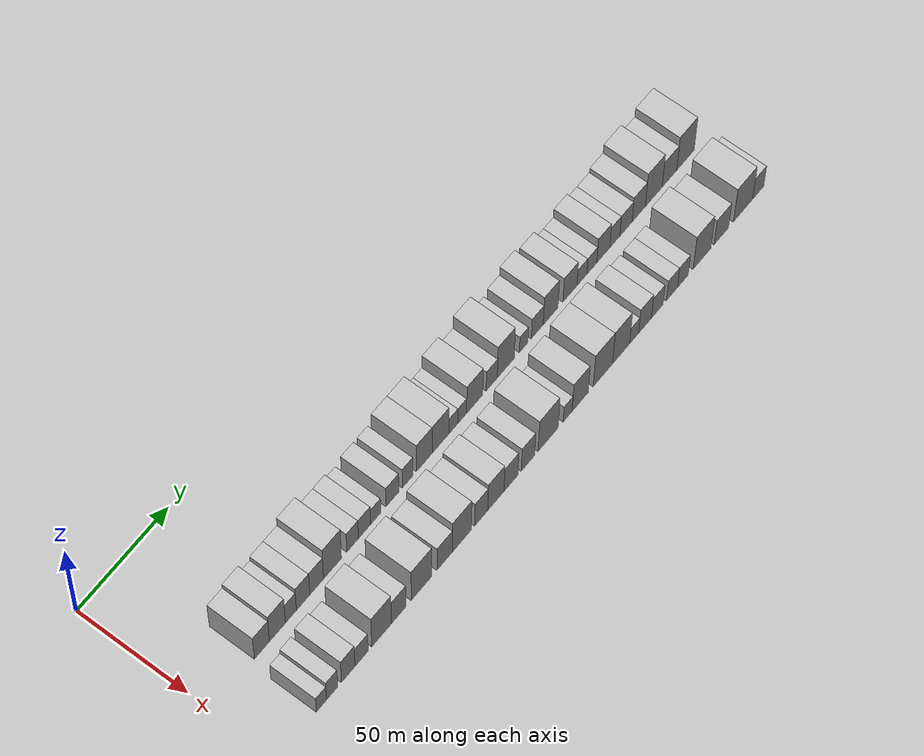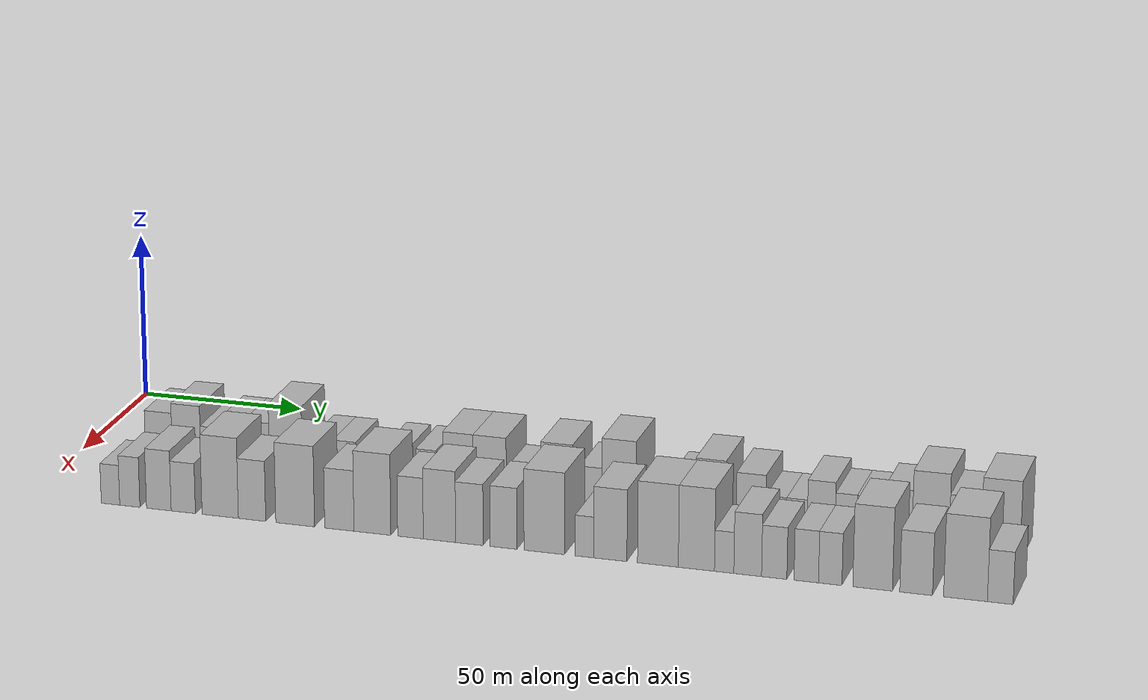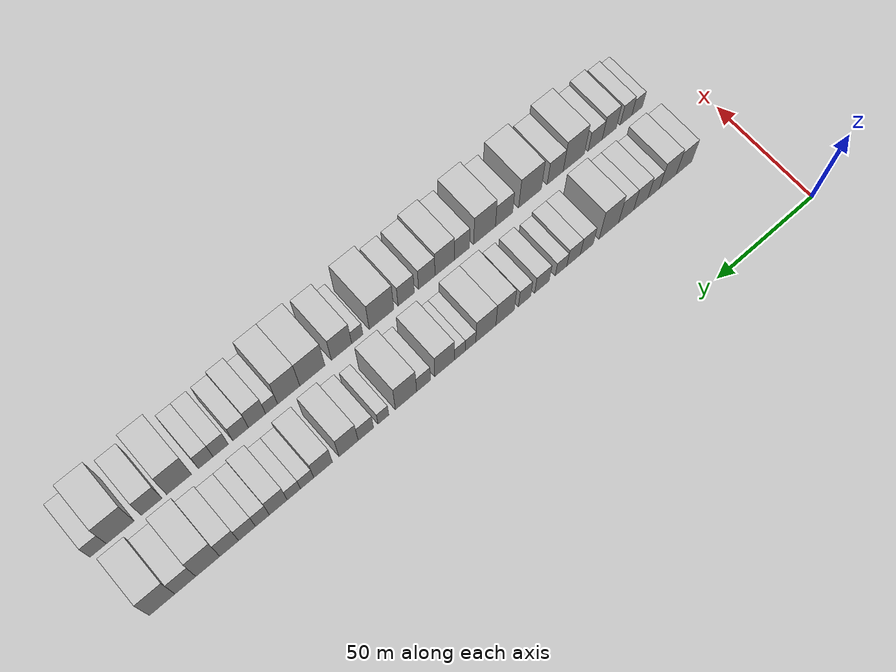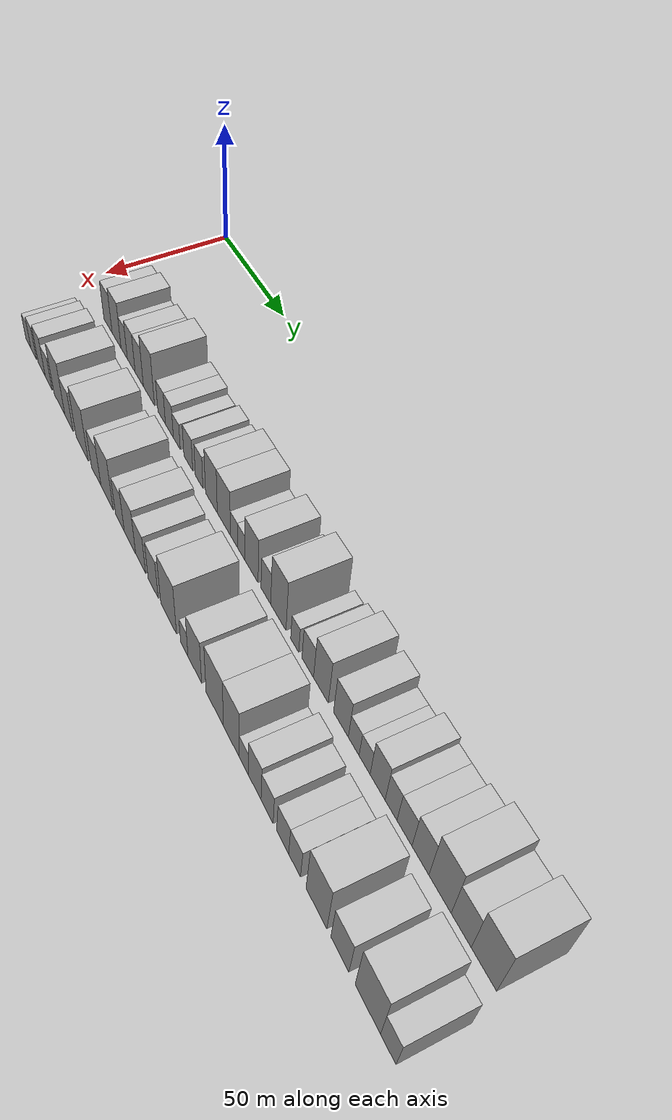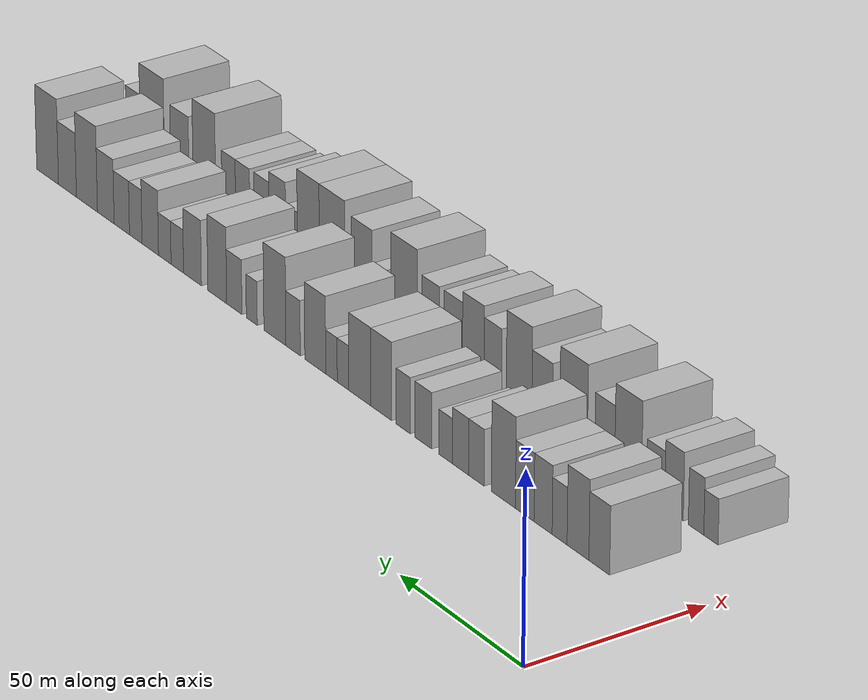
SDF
<sdf version="1.6">
 <world name="default">
  <model name="building_24">
   <static>1</static>
   <pose>50.0000 27.8491 0 0.000000 0.000000 0.000000</pose>
   <link name="link">
    <pose>0 0 9.00 0 0 0</pose>
    <collision name="collision"><geometry><box><size>20.0000 8.2705 18.0000</size></box></geometry></collision>
    <visual name="visual">
     <cast_shadows>0</cast_shadows>
     <geometry><box><size>20.0000 8.2705 18.0000</size></box></geometry>
     <material>
      <script>
       <uri>model://HANNAS_wall/materials/scripts</uri>
       <uri>model://HANNAS_wall/materials/textures</uri>
       <name>vrc/HANNAS_wall</name>
      </script>
     </material>
    </visual>
   </link>
  </model>
  <model name="building_25">
   <static>1</static>
   <pose>50.0000 36.3773 0 0.000000 0.000000 0.000000</pose>
   <link name="link">
    <pose>0 0 10.50 0 0 0</pose>
    <collision name="collision"><geometry><box><size>20.0000 8.7859 21.0000</size></box></geometry></collision>
    <visual name="visual">
     <cast_shadows>0</cast_shadows>
     <geometry><box><size>20.0000 8.7859 21.0000</size></box></geometry>
     <material>
      <script>
       <uri>model://HANNAS_wall/materials/scripts</uri>
       <uri>model://HANNAS_wall/materials/textures</uri>
       <name>vrc/HANNAS_wall</name>
      </script>
     </material>
    </visual>
   </link>
  </model>
  <model name="building_26">
   <static>1</static>
   <pose>50.0000 43.7820 0 0.000000 0.000000 0.000000</pose>
   <link name="link">
    <pose>0 0 7.50 0 0 0</pose>
    <collision name="collision"><geometry><box><size>20.0000 6.0235 15.0000</size></box></geometry></collision>
    <visual name="visual">
     <cast_shadows>0</cast_shadows>
     <geometry><box><size>20.0000 6.0235 15.0000</size></box></geometry>
     <material>
      <script>
       <uri>model://HANNAS_wall/materials/scripts</uri>
       <uri>model://HANNAS_wall/materials/textures</uri>
       <name>vrc/HANNAS_wall</name>
      </script>
     </material>
    </visual>
   </link>
  </model>
  <model name="building_27">
   <static>1</static>
   <pose>50.0000 50.4874 0 0.000000 0.000000 0.000000</pose>
   <link name="link">
    <pose>0 0 9.00 0 0 0</pose>
    <collision name="collision"><geometry><box><size>20.0000 7.3873 18.0000</size></box></geometry></collision>
    <visual name="visual">
     <cast_shadows>0</cast_shadows>
     <geometry><box><size>20.0000 7.3873 18.0000</size></box></geometry>
     <material>
      <script>
       <uri>model://HANNAS_wall/materials/scripts</uri>
       <uri>model://HANNAS_wall/materials/textures</uri>
       <name>vrc/HANNAS_wall</name>
      </script>
     </material>
    </visual>
   </link>
  </model>
  <model name="building_28">
   <static>1</static>
   <pose>50.0000 57.9974 0 0.000000 0.000000 0.000000</pose>
   <link name="link">
    <pose>0 0 9.00 0 0 0</pose>
    <collision name="collision"><geometry><box><size>20.0000 7.6327 18.0000</size></box></geometry></collision>
    <visual name="visual">
     <cast_shadows>0</cast_shadows>
     <geometry><box><size>20.0000 7.6327 18.0000</size></box></geometry>
     <material>
      <script>
       <uri>model://HANNAS_wall/materials/scripts</uri>
       <uri>model://HANNAS_wall/materials/textures</uri>
       <name>vrc/HANNAS_wall</name>
      </script>
     </material>
    </visual>
   </link>
  </model>
  <model name="building_29">
   <static>1</static>
   <pose>50.0000 66.8015 0 0.000000 0.000000 0.000000</pose>
   <link name="link">
    <pose>0 0 12.00 0 0 0</pose>
    <collision name="collision"><geometry><box><size>20.0000 9.9755 24.0000</size></box></geometry></collision>
    <visual name="visual">
     <cast_shadows>0</cast_shadows>
     <geometry><box><size>20.0000 9.9755 24.0000</size></box></geometry>
     <material>
      <script>
       <uri>model://HANNAS_wall/materials/scripts</uri>
       <uri>model://HANNAS_wall/materials/textures</uri>
       <name>vrc/HANNAS_wall</name>
      </script>
     </material>
    </visual>
   </link>
  </model>
  <model name="building_30">
   <static>1</static>
   <pose>50.0000 78.0534 0 0.000000 0.000000 0.000000</pose>
   <link name="link">
    <pose>0 0 7.50 0 0 0</pose>
    <collision name="collision"><geometry><box><size>20.0000 6.5283 15.0000</size></box></geometry></collision>
    <visual name="visual">
     <cast_shadows>0</cast_shadows>
     <geometry><box><size>20.0000 6.5283 15.0000</size></box></geometry>
     <material>
      <script>
       <uri>model://HANNAS_wall/materials/scripts</uri>
       <uri>model://HANNAS_wall/materials/textures</uri>
       <name>vrc/HANNAS_wall</name>
      </script>
     </material>
    </visual>
   </link>
  </model>
  <model name="building_31">
   <static>1</static>
   <pose>50.0000 84.7035 0 0.000000 0.000000 0.000000</pose>
   <link name="link">
    <pose>0 0 7.50 0 0 0</pose>
    <collision name="collision"><geometry><box><size>20.0000 6.7718 15.0000</size></box></geometry></collision>
    <visual name="visual">
     <cast_shadows>0</cast_shadows>
     <geometry><box><size>20.0000 6.7718 15.0000</size></box></geometry>
     <material>
      <script>
       <uri>model://HANNAS_wall/materials/scripts</uri>
       <uri>model://HANNAS_wall/materials/textures</uri>
       <name>vrc/HANNAS_wall</name>
      </script>
     </material>
    </visual>
   </link>
  </model>
  <model name="building_32">
   <static>1</static>
   <pose>50.0000 90.9740 0 0.000000 0.000000 0.000000</pose>
   <link name="link">
    <pose>0 0 6.00 0 0 0</pose>
    <collision name="collision"><geometry><box><size>20.0000 5.7691 12.0000</size></box></geometry></collision>
    <visual name="visual">
     <cast_shadows>0</cast_shadows>
     <geometry><box><size>20.0000 5.7691 12.0000</size></box></geometry>
     <material>
      <script>
       <uri>model://HANNAS_wall/materials/scripts</uri>
       <uri>model://HANNAS_wall/materials/textures</uri>
       <name>vrc/HANNAS_wall</name>
      </script>
     </material>
    </visual>
   </link>
  </model>
  <model name="building_33">
   <static>1</static>
   <pose>50.0000 100.4630 0 0.000000 0.000000 0.000000</pose>
   <link name="link">
    <pose>0 0 7.50 0 0 0</pose>
    <collision name="collision"><geometry><box><size>20.0000 7.2090 15.0000</size></box></geometry></collision>
    <visual name="visual">
     <cast_shadows>0</cast_shadows>
     <geometry><box><size>20.0000 7.2090 15.0000</size></box></geometry>
     <material>
      <script>
       <uri>model://HANNAS_wall/materials/scripts</uri>
       <uri>model://HANNAS_wall/materials/textures</uri>
       <name>vrc/HANNAS_wall</name>
      </script>
     </material>
    </visual>
   </link>
  </model>
  <model name="building_34">
   <static>1</static>
   <pose>50.0000 109.0796 0 0.000000 0.000000 0.000000</pose>
   <link name="link">
    <pose>0 0 7.50 0 0 0</pose>
    <collision name="collision"><geometry><box><size>20.0000 6.0240 15.0000</size></box></geometry></collision>
    <visual name="visual">
     <cast_shadows>0</cast_shadows>
     <geometry><box><size>20.0000 6.0240 15.0000</size></box></geometry>
     <material>
      <script>
       <uri>model://HANNAS_wall/materials/scripts</uri>
       <uri>model://HANNAS_wall/materials/textures</uri>
       <name>vrc/HANNAS_wall</name>
      </script>
     </material>
    </visual>
   </link>
  </model>
  <model name="building_35">
   <static>1</static>
   <pose>50.0000 118.5853 0 0.000000 0.000000 0.000000</pose>
   <link name="link">
    <pose>0 0 10.50 0 0 0</pose>
    <collision name="collision"><geometry><box><size>20.0000 8.9874 21.0000</size></box></geometry></collision>
    <visual name="visual">
     <cast_shadows>0</cast_shadows>
     <geometry><box><size>20.0000 8.9874 21.0000</size></box></geometry>
     <material>
      <script>
       <uri>model://HANNAS_wall/materials/scripts</uri>
       <uri>model://HANNAS_wall/materials/textures</uri>
       <name>vrc/HANNAS_wall</name>
      </script>
     </material>
    </visual>
   </link>
  </model>
  <model name="building_36">
   <static>1</static>
   <pose>50.0000 127.9263 0 0.000000 0.000000 0.000000</pose>
   <link name="link">
    <pose>0 0 10.50 0 0 0</pose>
    <collision name="collision"><geometry><box><size>20.0000 9.6948 21.0000</size></box></geometry></collision>
    <visual name="visual">
     <cast_shadows>0</cast_shadows>
     <geometry><box><size>20.0000 9.6948 21.0000</size></box></geometry>
     <material>
      <script>
       <uri>model://HANNAS_wall/materials/scripts</uri>
       <uri>model://HANNAS_wall/materials/textures</uri>
       <name>vrc/HANNAS_wall</name>
      </script>
     </material>
    </visual>
   </link>
  </model>
  <model name="building_37">
   <static>1</static>
   <pose>50.0000 135.3157 0 0.000000 0.000000 0.000000</pose>
   <link name="link">
    <pose>0 0 6.00 0 0 0</pose>
    <collision name="collision"><geometry><box><size>20.0000 5.0840 12.0000</size></box></geometry></collision>
    <visual name="visual">
     <cast_shadows>0</cast_shadows>
     <geometry><box><size>20.0000 5.0840 12.0000</size></box></geometry>
     <material>
      <script>
       <uri>model://HANNAS_wall/materials/scripts</uri>
       <uri>model://HANNAS_wall/materials/textures</uri>
       <name>vrc/HANNAS_wall</name>
      </script>
     </material>
    </visual>
   </link>
  </model>
  <model name="building_38">
   <static>1</static>
   <pose>50.0000 140.4086 0 0.000000 0.000000 0.000000</pose>
   <link name="link">
    <pose>0 0 6.00 0 0 0</pose>
    <collision name="collision"><geometry><box><size>20.0000 5.1019 12.0000</size></box></geometry></collision>
    <visual name="visual">
     <cast_shadows>0</cast_shadows>
     <geometry><box><size>20.0000 5.1019 12.0000</size></box></geometry>
     <material>
      <script>
       <uri>model://HANNAS_wall/materials/scripts</uri>
       <uri>model://HANNAS_wall/materials/textures</uri>
       <name>vrc/HANNAS_wall</name>
      </script>
     </material>
    </visual>
   </link>
  </model>
  <model name="building_39">
   <static>1</static>
   <pose>50.0000 147.6372 0 0.000000 0.000000 0.000000</pose>
   <link name="link">
    <pose>0 0 10.50 0 0 0</pose>
    <collision name="collision"><geometry><box><size>20.0000 9.3553 21.0000</size></box></geometry></collision>
    <visual name="visual">
     <cast_shadows>0</cast_shadows>
     <geometry><box><size>20.0000 9.3553 21.0000</size></box></geometry>
     <material>
      <script>
       <uri>model://HANNAS_wall/materials/scripts</uri>
       <uri>model://HANNAS_wall/materials/textures</uri>
       <name>vrc/HANNAS_wall</name>
      </script>
     </material>
    </visual>
   </link>
  </model>
  <model name="building_40">
   <static>1</static>
   <pose>50.0000 157.5673 0 0.000000 0.000000 0.000000</pose>
   <link name="link">
    <pose>0 0 7.50 0 0 0</pose>
    <collision name="collision"><geometry><box><size>20.0000 6.5049 15.0000</size></box></geometry></collision>
    <visual name="visual">
     <cast_shadows>0</cast_shadows>
     <geometry><box><size>20.0000 6.5049 15.0000</size></box></geometry>
     <material>
      <script>
       <uri>model://HANNAS_wall/materials/scripts</uri>
       <uri>model://HANNAS_wall/materials/textures</uri>
       <name>vrc/HANNAS_wall</name>
      </script>
     </material>
    </visual>
   </link>
  </model>
  <model name="building_41">
   <static>1</static>
   <pose>50.0000 165.8030 0 0.000000 0.000000 0.000000</pose>
   <link name="link">
    <pose>0 0 12.00 0 0 0</pose>
    <collision name="collision"><geometry><box><size>20.0000 9.9665 24.0000</size></box></geometry></collision>
    <visual name="visual">
     <cast_shadows>0</cast_shadows>
     <geometry><box><size>20.0000 9.9665 24.0000</size></box></geometry>
     <material>
      <script>
       <uri>model://HANNAS_wall/materials/scripts</uri>
       <uri>model://HANNAS_wall/materials/textures</uri>
       <name>vrc/HANNAS_wall</name>
      </script>
     </material>
    </visual>
   </link>
  </model>
  <model name="building_42">
   <static>1</static>
   <pose>50.0000 176.2996 0 0.000000 0.000000 0.000000</pose>
   <link name="link">
    <pose>0 0 6.00 0 0 0</pose>
    <collision name="collision"><geometry><box><size>20.0000 5.0267 12.0000</size></box></geometry></collision>
    <visual name="visual">
     <cast_shadows>0</cast_shadows>
     <geometry><box><size>20.0000 5.0267 12.0000</size></box></geometry>
     <material>
      <script>
       <uri>model://HANNAS_wall/materials/scripts</uri>
       <uri>model://HANNAS_wall/materials/textures</uri>
       <name>vrc/HANNAS_wall</name>
      </script>
     </material>
    </visual>
   </link>
  </model>
  <model name="building_43">
   <static>1</static>
   <pose>50.0000 184.3478 0 0.000000 0.000000 0.000000</pose>
   <link name="link">
    <pose>0 0 7.50 0 0 0</pose>
    <collision name="collision"><geometry><box><size>20.0000 7.0698 15.0000</size></box></geometry></collision>
    <visual name="visual">
     <cast_shadows>0</cast_shadows>
     <geometry><box><size>20.0000 7.0698 15.0000</size></box></geometry>
     <material>
      <script>
       <uri>model://HANNAS_wall/materials/scripts</uri>
       <uri>model://HANNAS_wall/materials/textures</uri>
       <name>vrc/HANNAS_wall</name>
      </script>
     </material>
    </visual>
   </link>
  </model>
  <model name="building_44">
   <static>1</static>
   <pose>50.0000 192.2530 0 0.000000 0.000000 0.000000</pose>
   <link name="link">
    <pose>0 0 10.50 0 0 0</pose>
    <collision name="collision"><geometry><box><size>20.0000 8.7406 21.0000</size></box></geometry></collision>
    <visual name="visual">
     <cast_shadows>0</cast_shadows>
     <geometry><box><size>20.0000 8.7406 21.0000</size></box></geometry>
     <material>
      <script>
       <uri>model://HANNAS_wall/materials/scripts</uri>
       <uri>model://HANNAS_wall/materials/textures</uri>
       <name>vrc/HANNAS_wall</name>
      </script>
     </material>
    </visual>
   </link>
  </model>
  <model name="building_45">
   <static>1</static>
   <pose>50.0000 203.8163 0 0.000000 0.000000 0.000000</pose>
   <link name="link">
    <pose>0 0 9.00 0 0 0</pose>
    <collision name="collision"><geometry><box><size>20.0000 8.3859 18.0000</size></box></geometry></collision>
    <visual name="visual">
     <cast_shadows>0</cast_shadows>
     <geometry><box><size>20.0000 8.3859 18.0000</size></box></geometry>
     <material>
      <script>
       <uri>model://HANNAS_wall/materials/scripts</uri>
       <uri>model://HANNAS_wall/materials/textures</uri>
       <name>vrc/HANNAS_wall</name>
      </script>
     </material>
    </visual>
   </link>
  </model>
  <model name="building_46">
   <static>1</static>
   <pose>50.0000 210.9679 0 0.000000 0.000000 0.000000</pose>
   <link name="link">
    <pose>0 0 6.00 0 0 0</pose>
    <collision name="collision"><geometry><box><size>20.0000 5.9173 12.0000</size></box></geometry></collision>
    <visual name="visual">
     <cast_shadows>0</cast_shadows>
     <geometry><box><size>20.0000 5.9173 12.0000</size></box></geometry>
     <material>
      <script>
       <uri>model://HANNAS_wall/materials/scripts</uri>
       <uri>model://HANNAS_wall/materials/textures</uri>
       <name>vrc/HANNAS_wall</name>
      </script>
     </material>
    </visual>
   </link>
  </model>
  <model name="building_47">
   <static>1</static>
   <pose>50.0000 216.8930 0 0.000000 0.000000 0.000000</pose>
   <link name="link">
    <pose>0 0 6.00 0 0 0</pose>
    <collision name="collision"><geometry><box><size>20.0000 5.9330 12.0000</size></box></geometry></collision>
    <visual name="visual">
     <cast_shadows>0</cast_shadows>
     <geometry><box><size>20.0000 5.9330 12.0000</size></box></geometry>
     <material>
      <script>
       <uri>model://HANNAS_wall/materials/scripts</uri>
       <uri>model://HANNAS_wall/materials/textures</uri>
       <name>vrc/HANNAS_wall</name>
      </script>
     </material>
    </visual>
   </link>
  </model>
  <model name="building_48">
   <static>1</static>
   <pose>50.0000 223.8020 0 0.000000 0.000000 0.000000</pose>
   <link name="link">
    <pose>0 0 9.00 0 0 0</pose>
    <collision name="collision"><geometry><box><size>20.0000 7.8851 18.0000</size></box></geometry></collision>
    <visual name="visual">
     <cast_shadows>0</cast_shadows>
     <geometry><box><size>20.0000 7.8851 18.0000</size></box></geometry>
     <material>
      <script>
       <uri>model://HANNAS_wall/materials/scripts</uri>
       <uri>model://HANNAS_wall/materials/textures</uri>
       <name>vrc/HANNAS_wall</name>
      </script>
     </material>
    </visual>
   </link>
  </model>
  <model name="building_49">
   <static>1</static>
   <pose>50.0000 230.7724 0 0.000000 0.000000 0.000000</pose>
   <link name="link">
    <pose>0 0 7.50 0 0 0</pose>
    <collision name="collision"><geometry><box><size>20.0000 6.0558 15.0000</size></box></geometry></collision>
    <visual name="visual">
     <cast_shadows>0</cast_shadows>
     <geometry><box><size>20.0000 6.0558 15.0000</size></box></geometry>
     <material>
      <script>
       <uri>model://HANNAS_wall/materials/scripts</uri>
       <uri>model://HANNAS_wall/materials/textures</uri>
       <name>vrc/HANNAS_wall</name>
      </script>
     </material>
    </visual>
   </link>
  </model>
  <model name="building_50">
   <static>1</static>
   <pose>50.0000 237.5136 0 0.000000 0.000000 0.000000</pose>
   <link name="link">
    <pose>0 0 7.50 0 0 0</pose>
    <collision name="collision"><geometry><box><size>20.0000 7.4265 15.0000</size></box></geometry></collision>
    <visual name="visual">
     <cast_shadows>0</cast_shadows>
     <geometry><box><size>20.0000 7.4265 15.0000</size></box></geometry>
     <material>
      <script>
       <uri>model://HANNAS_wall/materials/scripts</uri>
       <uri>model://HANNAS_wall/materials/textures</uri>
       <name>vrc/HANNAS_wall</name>
      </script>
     </material>
    </visual>
   </link>
  </model>
  <model name="building_51">
   <static>1</static>
   <pose>50.0000 245.2830 0 0.000000 0.000000 0.000000</pose>
   <link name="link">
    <pose>0 0 9.00 0 0 0</pose>
    <collision name="collision"><geometry><box><size>20.0000 8.1123 18.0000</size></box></geometry></collision>
    <visual name="visual">
     <cast_shadows>0</cast_shadows>
     <geometry><box><size>20.0000 8.1123 18.0000</size></box></geometry>
     <material>
      <script>
       <uri>model://HANNAS_wall/materials/scripts</uri>
       <uri>model://HANNAS_wall/materials/textures</uri>
       <name>vrc/HANNAS_wall</name>
      </script>
     </material>
    </visual>
   </link>
  </model>
  <model name="building_52">
   <static>1</static>
   <pose>50.0000 254.5072 0 0.000000 0.000000 0.000000</pose>
   <link name="link">
    <pose>0 0 12.00 0 0 0</pose>
    <collision name="collision"><geometry><box><size>20.0000 10.3362 24.0000</size></box></geometry></collision>
    <visual name="visual">
     <cast_shadows>0</cast_shadows>
     <geometry><box><size>20.0000 10.3362 24.0000</size></box></geometry>
     <material>
      <script>
       <uri>model://HANNAS_wall/materials/scripts</uri>
       <uri>model://HANNAS_wall/materials/textures</uri>
       <name>vrc/HANNAS_wall</name>
      </script>
     </material>
    </visual>
   </link>
  </model>
  <model name="building_53">
   <static>1</static>
   <pose>50.0000 264.1224 0 0.000000 0.000000 0.000000</pose>
   <link name="link">
    <pose>0 0 9.00 0 0 0</pose>
    <collision name="collision"><geometry><box><size>20.0000 8.8940 18.0000</size></box></geometry></collision>
    <visual name="visual">
     <cast_shadows>0</cast_shadows>
     <geometry><box><size>20.0000 8.8940 18.0000</size></box></geometry>
     <material>
      <script>
       <uri>model://HANNAS_wall/materials/scripts</uri>
       <uri>model://HANNAS_wall/materials/textures</uri>
       <name>vrc/HANNAS_wall</name>
      </script>
     </material>
    </visual>
   </link>
  </model>
  <model name="building_54">
   <static>1</static>
   <pose>50.0000 273.9861 0 0.000000 0.000000 0.000000</pose>
   <link name="link">
    <pose>0 0 12.00 0 0 0</pose>
    <collision name="collision"><geometry><box><size>20.0000 10.8333 24.0000</size></box></geometry></collision>
    <visual name="visual">
     <cast_shadows>0</cast_shadows>
     <geometry><box><size>20.0000 10.8333 24.0000</size></box></geometry>
     <material>
      <script>
       <uri>model://HANNAS_wall/materials/scripts</uri>
       <uri>model://HANNAS_wall/materials/textures</uri>
       <name>vrc/HANNAS_wall</name>
      </script>
     </material>
    </visual>
   </link>
  </model>
  <model name="building_90">
   <static>1</static>
   <pose>79.0000 24.3733 0 0.000000 0.000000 0.000000</pose>
   <link name="link">
    <pose>0 0 6.00 0 0 0</pose>
    <collision name="collision"><geometry><box><size>20.0000 5.6121 12.0000</size></box></geometry></collision>
    <visual name="visual">
     <cast_shadows>0</cast_shadows>
     <geometry><box><size>20.0000 5.6121 12.0000</size></box></geometry>
     <material>
      <script>
       <uri>model://HANNAS_wall/materials/scripts</uri>
       <uri>model://HANNAS_wall/materials/textures</uri>
       <name>vrc/HANNAS_wall</name>
      </script>
     </material>
    </visual>
   </link>
  </model>
  <model name="building_91">
   <static>1</static>
   <pose>79.0000 30.2475 0 0.000000 0.000000 0.000000</pose>
   <link name="link">
    <pose>0 0 7.50 0 0 0</pose>
    <collision name="collision"><geometry><box><size>20.0000 6.1364 15.0000</size></box></geometry></collision>
    <visual name="visual">
     <cast_shadows>0</cast_shadows>
     <geometry><box><size>20.0000 6.1364 15.0000</size></box></geometry>
     <material>
      <script>
       <uri>model://HANNAS_wall/materials/scripts</uri>
       <uri>model://HANNAS_wall/materials/textures</uri>
       <name>vrc/HANNAS_wall</name>
      </script>
     </material>
    </visual>
   </link>
  </model>
  <model name="building_92">
   <static>1</static>
   <pose>79.0000 39.0404 0 0.000000 0.000000 0.000000</pose>
   <link name="link">
    <pose>0 0 9.00 0 0 0</pose>
    <collision name="collision"><geometry><box><size>20.0000 7.4494 18.0000</size></box></geometry></collision>
    <visual name="visual">
     <cast_shadows>0</cast_shadows>
     <geometry><box><size>20.0000 7.4494 18.0000</size></box></geometry>
     <material>
      <script>
       <uri>model://HANNAS_wall/materials/scripts</uri>
       <uri>model://HANNAS_wall/materials/textures</uri>
       <name>vrc/HANNAS_wall</name>
      </script>
     </material>
    </visual>
   </link>
  </model>
  <model name="building_93">
   <static>1</static>
   <pose>79.0000 46.4262 0 0.000000 0.000000 0.000000</pose>
   <link name="link">
    <pose>0 0 7.50 0 0 0</pose>
    <collision name="collision"><geometry><box><size>20.0000 7.3222 15.0000</size></box></geometry></collision>
    <visual name="visual">
     <cast_shadows>0</cast_shadows>
     <geometry><box><size>20.0000 7.3222 15.0000</size></box></geometry>
     <material>
      <script>
       <uri>model://HANNAS_wall/materials/scripts</uri>
       <uri>model://HANNAS_wall/materials/textures</uri>
       <name>vrc/HANNAS_wall</name>
      </script>
     </material>
    </visual>
   </link>
  </model>
  <model name="building_94">
   <static>1</static>
   <pose>79.0000 57.5290 0 0.000000 0.000000 0.000000</pose>
   <link name="link">
    <pose>0 0 12.00 0 0 0</pose>
    <collision name="collision"><geometry><box><size>20.0000 10.8833 24.0000</size></box></geometry></collision>
    <visual name="visual">
     <cast_shadows>0</cast_shadows>
     <geometry><box><size>20.0000 10.8833 24.0000</size></box></geometry>
     <material>
      <script>
       <uri>model://HANNAS_wall/materials/scripts</uri>
       <uri>model://HANNAS_wall/materials/textures</uri>
       <name>vrc/HANNAS_wall</name>
      </script>
     </material>
    </visual>
   </link>
  </model>
  <model name="building_95">
   <static>1</static>
   <pose>79.0000 67.0532 0 0.000000 0.000000 0.000000</pose>
   <link name="link">
    <pose>0 0 9.00 0 0 0</pose>
    <collision name="collision"><geometry><box><size>20.0000 8.1651 18.0000</size></box></geometry></collision>
    <visual name="visual">
     <cast_shadows>0</cast_shadows>
     <geometry><box><size>20.0000 8.1651 18.0000</size></box></geometry>
     <material>
      <script>
       <uri>model://HANNAS_wall/materials/scripts</uri>
       <uri>model://HANNAS_wall/materials/textures</uri>
       <name>vrc/HANNAS_wall</name>
      </script>
     </material>
    </visual>
   </link>
  </model>
  <model name="building_96">
   <static>1</static>
   <pose>79.0000 79.8770 0 0.000000 0.000000 0.000000</pose>
   <link name="link">
    <pose>0 0 12.00 0 0 0</pose>
    <collision name="collision"><geometry><box><size>20.0000 11.4825 24.0000</size></box></geometry></collision>
    <visual name="visual">
     <cast_shadows>0</cast_shadows>
     <geometry><box><size>20.0000 11.4825 24.0000</size></box></geometry>
     <material>
      <script>
       <uri>model://HANNAS_wall/materials/scripts</uri>
       <uri>model://HANNAS_wall/materials/textures</uri>
       <name>vrc/HANNAS_wall</name>
      </script>
     </material>
    </visual>
   </link>
  </model>
  <model name="building_97">
   <static>1</static>
   <pose>79.0000 92.9454 0 0.000000 0.000000 0.000000</pose>
   <link name="link">
    <pose>0 0 9.00 0 0 0</pose>
    <collision name="collision"><geometry><box><size>20.0000 8.6543 18.0000</size></box></geometry></collision>
    <visual name="visual">
     <cast_shadows>0</cast_shadows>
     <geometry><box><size>20.0000 8.6543 18.0000</size></box></geometry>
     <material>
      <script>
       <uri>model://HANNAS_wall/materials/scripts</uri>
       <uri>model://HANNAS_wall/materials/textures</uri>
       <name>vrc/HANNAS_wall</name>
      </script>
     </material>
    </visual>
   </link>
  </model>
  <model name="building_98">
   <static>1</static>
   <pose>79.0000 102.6811 0 0.000000 0.000000 0.000000</pose>
   <link name="link">
    <pose>0 0 12.00 0 0 0</pose>
    <collision name="collision"><geometry><box><size>20.0000 10.8170 24.0000</size></box></geometry></collision>
    <visual name="visual">
     <cast_shadows>0</cast_shadows>
     <geometry><box><size>20.0000 10.8170 24.0000</size></box></geometry>
     <material>
      <script>
       <uri>model://HANNAS_wall/materials/scripts</uri>
       <uri>model://HANNAS_wall/materials/textures</uri>
       <name>vrc/HANNAS_wall</name>
      </script>
     </material>
    </visual>
   </link>
  </model>
  <model name="building_99">
   <static>1</static>
   <pose>79.0000 113.8217 0 0.000000 0.000000 0.000000</pose>
   <link name="link">
    <pose>0 0 9.00 0 0 0</pose>
    <collision name="collision"><geometry><box><size>20.0000 7.4642 18.0000</size></box></geometry></collision>
    <visual name="visual">
     <cast_shadows>0</cast_shadows>
     <geometry><box><size>20.0000 7.4642 18.0000</size></box></geometry>
     <material>
      <script>
       <uri>model://HANNAS_wall/materials/scripts</uri>
       <uri>model://HANNAS_wall/materials/textures</uri>
       <name>vrc/HANNAS_wall</name>
      </script>
     </material>
    </visual>
   </link>
  </model>
  <model name="building_100">
   <static>1</static>
   <pose>79.0000 122.2452 0 0.000000 0.000000 0.000000</pose>
   <link name="link">
    <pose>0 0 10.50 0 0 0</pose>
    <collision name="collision"><geometry><box><size>20.0000 9.3828 21.0000</size></box></geometry></collision>
    <visual name="visual">
     <cast_shadows>0</cast_shadows>
     <geometry><box><size>20.0000 9.3828 21.0000</size></box></geometry>
     <material>
      <script>
       <uri>model://HANNAS_wall/materials/scripts</uri>
       <uri>model://HANNAS_wall/materials/textures</uri>
       <name>vrc/HANNAS_wall</name>
      </script>
     </material>
    </visual>
   </link>
  </model>
  <model name="building_101">
   <static>1</static>
   <pose>79.0000 130.9260 0 0.000000 0.000000 0.000000</pose>
   <link name="link">
    <pose>0 0 9.00 0 0 0</pose>
    <collision name="collision"><geometry><box><size>20.0000 7.9788 18.0000</size></box></geometry></collision>
    <visual name="visual">
     <cast_shadows>0</cast_shadows>
     <geometry><box><size>20.0000 7.9788 18.0000</size></box></geometry>
     <material>
      <script>
       <uri>model://HANNAS_wall/materials/scripts</uri>
       <uri>model://HANNAS_wall/materials/textures</uri>
       <name>vrc/HANNAS_wall</name>
      </script>
     </material>
    </visual>
   </link>
  </model>
  <model name="building_102">
   <static>1</static>
   <pose>79.0000 140.8054 0 0.000000 0.000000 0.000000</pose>
   <link name="link">
    <pose>0 0 9.00 0 0 0</pose>
    <collision name="collision"><geometry><box><size>20.0000 7.7801 18.0000</size></box></geometry></collision>
    <visual name="visual">
     <cast_shadows>0</cast_shadows>
     <geometry><box><size>20.0000 7.7801 18.0000</size></box></geometry>
     <material>
      <script>
       <uri>model://HANNAS_wall/materials/scripts</uri>
       <uri>model://HANNAS_wall/materials/textures</uri>
       <name>vrc/HANNAS_wall</name>
      </script>
     </material>
    </visual>
   </link>
  </model>
  <model name="building_103">
   <static>1</static>
   <pose>79.0000 152.5321 0 0.000000 0.000000 0.000000</pose>
   <link name="link">
    <pose>0 0 12.00 0 0 0</pose>
    <collision name="collision"><geometry><box><size>20.0000 11.6733 24.0000</size></box></geometry></collision>
    <visual name="visual">
     <cast_shadows>0</cast_shadows>
     <geometry><box><size>20.0000 11.6733 24.0000</size></box></geometry>
     <material>
      <script>
       <uri>model://HANNAS_wall/materials/scripts</uri>
       <uri>model://HANNAS_wall/materials/textures</uri>
       <name>vrc/HANNAS_wall</name>
      </script>
     </material>
    </visual>
   </link>
  </model>
  <model name="building_104">
   <static>1</static>
   <pose>79.0000 163.9935 0 0.000000 0.000000 0.000000</pose>
   <link name="link">
    <pose>0 0 6.00 0 0 0</pose>
    <collision name="collision"><geometry><box><size>20.0000 5.2494 12.0000</size></box></geometry></collision>
    <visual name="visual">
     <cast_shadows>0</cast_shadows>
     <geometry><box><size>20.0000 5.2494 12.0000</size></box></geometry>
     <material>
      <script>
       <uri>model://HANNAS_wall/materials/scripts</uri>
       <uri>model://HANNAS_wall/materials/textures</uri>
       <name>vrc/HANNAS_wall</name>
      </script>
     </material>
    </visual>
   </link>
  </model>
  <model name="building_105">
   <static>1</static>
   <pose>79.0000 171.3527 0 0.000000 0.000000 0.000000</pose>
   <link name="link">
    <pose>0 0 10.50 0 0 0</pose>
    <collision name="collision"><geometry><box><size>20.0000 9.4689 21.0000</size></box></geometry></collision>
    <visual name="visual">
     <cast_shadows>0</cast_shadows>
     <geometry><box><size>20.0000 9.4689 21.0000</size></box></geometry>
     <material>
      <script>
       <uri>model://HANNAS_wall/materials/scripts</uri>
       <uri>model://HANNAS_wall/materials/textures</uri>
       <name>vrc/HANNAS_wall</name>
      </script>
     </material>
    </visual>
   </link>
  </model>
  <model name="building_106">
   <static>1</static>
   <pose>79.0000 184.8543 0 0.000000 0.000000 0.000000</pose>
   <link name="link">
    <pose>0 0 12.00 0 0 0</pose>
    <collision name="collision"><geometry><box><size>20.0000 11.5344 24.0000</size></box></geometry></collision>
    <visual name="visual">
     <cast_shadows>0</cast_shadows>
     <geometry><box><size>20.0000 11.5344 24.0000</size></box></geometry>
     <material>
      <script>
       <uri>model://HANNAS_wall/materials/scripts</uri>
       <uri>model://HANNAS_wall/materials/textures</uri>
       <name>vrc/HANNAS_wall</name>
      </script>
     </material>
    </visual>
   </link>
  </model>
  <model name="building_107">
   <static>1</static>
   <pose>79.0000 195.6946 0 0.000000 0.000000 0.000000</pose>
   <link name="link">
    <pose>0 0 12.00 0 0 0</pose>
    <collision name="collision"><geometry><box><size>20.0000 10.1463 24.0000</size></box></geometry></collision>
    <visual name="visual">
     <cast_shadows>0</cast_shadows>
     <geometry><box><size>20.0000 10.1463 24.0000</size></box></geometry>
     <material>
      <script>
       <uri>model://HANNAS_wall/materials/scripts</uri>
       <uri>model://HANNAS_wall/materials/textures</uri>
       <name>vrc/HANNAS_wall</name>
      </script>
     </material>
    </visual>
   </link>
  </model>
  <model name="building_108">
   <static>1</static>
   <pose>79.0000 203.4761 0 0.000000 0.000000 0.000000</pose>
   <link name="link">
    <pose>0 0 6.00 0 0 0</pose>
    <collision name="collision"><geometry><box><size>20.0000 5.4166 12.0000</size></box></geometry></collision>
    <visual name="visual">
     <cast_shadows>0</cast_shadows>
     <geometry><box><size>20.0000 5.4166 12.0000</size></box></geometry>
     <material>
      <script>
       <uri>model://HANNAS_wall/materials/scripts</uri>
       <uri>model://HANNAS_wall/materials/textures</uri>
       <name>vrc/HANNAS_wall</name>
      </script>
     </material>
    </visual>
   </link>
  </model>
  <model name="building_109">
   <static>1</static>
   <pose>79.0000 210.0452 0 0.000000 0.000000 0.000000</pose>
   <link name="link">
    <pose>0 0 9.00 0 0 0</pose>
    <collision name="collision"><geometry><box><size>20.0000 7.7216 18.0000</size></box></geometry></collision>
    <visual name="visual">
     <cast_shadows>0</cast_shadows>
     <geometry><box><size>20.0000 7.7216 18.0000</size></box></geometry>
     <material>
      <script>
       <uri>model://HANNAS_wall/materials/scripts</uri>
       <uri>model://HANNAS_wall/materials/textures</uri>
       <name>vrc/HANNAS_wall</name>
      </script>
     </material>
    </visual>
   </link>
  </model>
  <model name="building_110">
   <static>1</static>
   <pose>79.0000 217.4243 0 0.000000 0.000000 0.000000</pose>
   <link name="link">
    <pose>0 0 7.50 0 0 0</pose>
    <collision name="collision"><geometry><box><size>20.0000 7.0367 15.0000</size></box></geometry></collision>
    <visual name="visual">
     <cast_shadows>0</cast_shadows>
     <geometry><box><size>20.0000 7.0367 15.0000</size></box></geometry>
     <material>
      <script>
       <uri>model://HANNAS_wall/materials/scripts</uri>
       <uri>model://HANNAS_wall/materials/textures</uri>
       <name>vrc/HANNAS_wall</name>
      </script>
     </material>
    </visual>
   </link>
  </model>
  <model name="building_111">
   <static>1</static>
   <pose>79.0000 226.3250 0 0.000000 0.000000 0.000000</pose>
   <link name="link">
    <pose>0 0 7.50 0 0 0</pose>
    <collision name="collision"><geometry><box><size>20.0000 6.7648 15.0000</size></box></geometry></collision>
    <visual name="visual">
     <cast_shadows>0</cast_shadows>
     <geometry><box><size>20.0000 6.7648 15.0000</size></box></geometry>
     <material>
      <script>
       <uri>model://HANNAS_wall/materials/scripts</uri>
       <uri>model://HANNAS_wall/materials/textures</uri>
       <name>vrc/HANNAS_wall</name>
      </script>
     </material>
    </visual>
   </link>
  </model>
  <model name="building_112">
   <static>1</static>
   <pose>79.0000 232.9367 0 0.000000 0.000000 0.000000</pose>
   <link name="link">
    <pose>0 0 7.50 0 0 0</pose>
    <collision name="collision"><geometry><box><size>20.0000 6.4586 15.0000</size></box></geometry></collision>
    <visual name="visual">
     <cast_shadows>0</cast_shadows>
     <geometry><box><size>20.0000 6.4586 15.0000</size></box></geometry>
     <material>
      <script>
       <uri>model://HANNAS_wall/materials/scripts</uri>
       <uri>model://HANNAS_wall/materials/textures</uri>
       <name>vrc/HANNAS_wall</name>
      </script>
     </material>
    </visual>
   </link>
  </model>
  <model name="building_113">
   <static>1</static>
   <pose>79.0000 244.6000 0 0.000000 0.000000 0.000000</pose>
   <link name="link">
    <pose>0 0 12.00 0 0 0</pose>
    <collision name="collision"><geometry><box><size>20.0000 10.8680 24.0000</size></box></geometry></collision>
    <visual name="visual">
     <cast_shadows>0</cast_shadows>
     <geometry><box><size>20.0000 10.8680 24.0000</size></box></geometry>
     <material>
      <script>
       <uri>model://HANNAS_wall/materials/scripts</uri>
       <uri>model://HANNAS_wall/materials/textures</uri>
       <name>vrc/HANNAS_wall</name>
      </script>
     </material>
    </visual>
   </link>
  </model>
  <model name="building_114">
   <static>1</static>
   <pose>79.0000 256.5031 0 0.000000 0.000000 0.000000</pose>
   <link name="link">
    <pose>0 0 9.00 0 0 0</pose>
    <collision name="collision"><geometry><box><size>20.0000 8.9382 18.0000</size></box></geometry></collision>
    <visual name="visual">
     <cast_shadows>0</cast_shadows>
     <geometry><box><size>20.0000 8.9382 18.0000</size></box></geometry>
     <material>
      <script>
       <uri>model://HANNAS_wall/materials/scripts</uri>
       <uri>model://HANNAS_wall/materials/textures</uri>
       <name>vrc/HANNAS_wall</name>
      </script>
     </material>
    </visual>
   </link>
  </model>
  <model name="building_115">
   <static>1</static>
   <pose>79.0000 269.9069 0 0.000000 0.000000 0.000000</pose>
   <link name="link">
    <pose>0 0 12.00 0 0 0</pose>
    <collision name="collision"><geometry><box><size>20.0000 11.8694 24.0000</size></box></geometry></collision>
    <visual name="visual">
     <cast_shadows>0</cast_shadows>
     <geometry><box><size>20.0000 11.8694 24.0000</size></box></geometry>
     <material>
      <script>
       <uri>model://HANNAS_wall/materials/scripts</uri>
       <uri>model://HANNAS_wall/materials/textures</uri>
       <name>vrc/HANNAS_wall</name>
      </script>
     </material>
    </visual>
   </link>
  </model>
  <model name="building_116">
   <static>1</static>
   <pose>79.0000 279.3136 0 0.000000 0.000000 0.000000</pose>
   <link name="link">
    <pose>0 0 7.50 0 0 0</pose>
    <collision name="collision"><geometry><box><size>20.0000 6.9438 15.0000</size></box></geometry></collision>
    <visual name="visual">
     <cast_shadows>0</cast_shadows>
     <geometry><box><size>20.0000 6.9438 15.0000</size></box></geometry>
     <material>
      <script>
       <uri>model://HANNAS_wall/materials/scripts</uri>
       <uri>model://HANNAS_wall/materials/textures</uri>
       <name>vrc/HANNAS_wall</name>
      </script>
     </material>
    </visual>
   </link>
  </model>
 </world>
</sdf>
